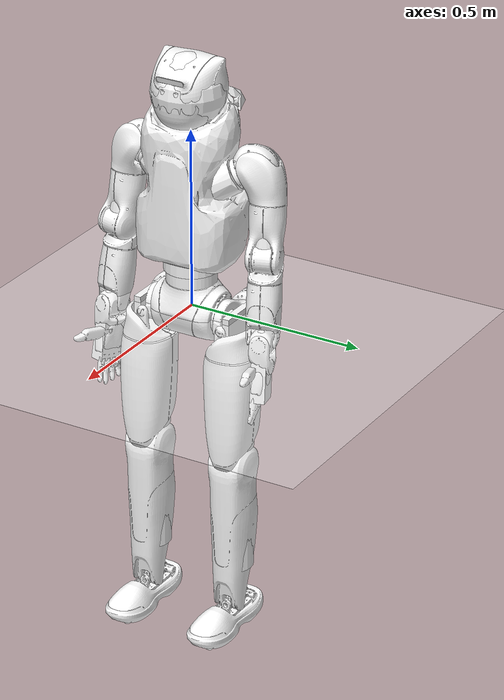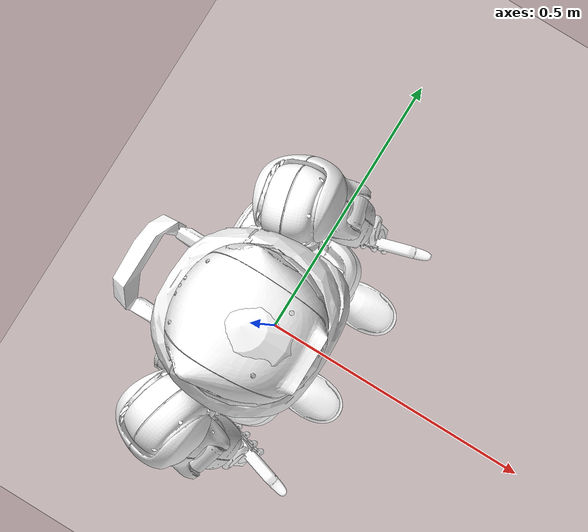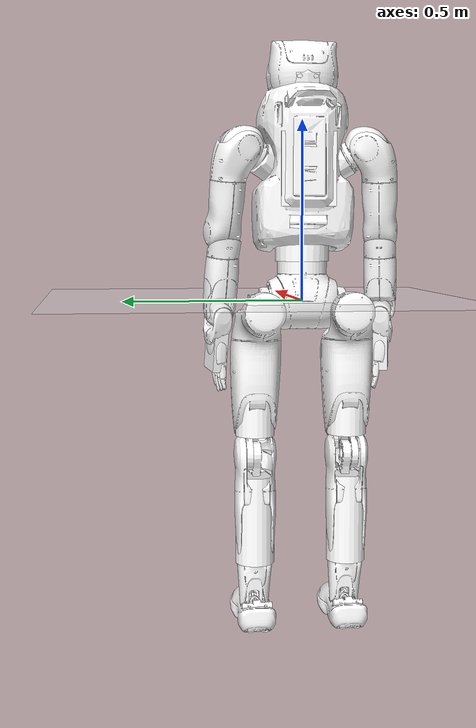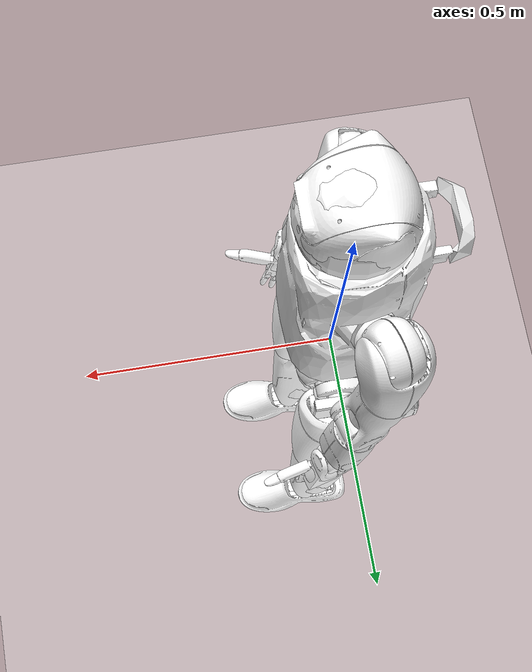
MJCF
<mujoco model="gr3v2_1_1_dummy_hand">
  <compiler angle="radian" meshdir="../meshes/"/>

  <asset>
    <texture type="skybox" builtin="gradient" rgb1="1 1 1" rgb2="1 1 1" width="800" height="800"/>
    <texture type="2d" name="groundplane" builtin="checker" mark="edge" rgb1="1 1 1" rgb2="1 1 1" markrgb="0 0 0"
      width="300" height="300"/>
    <material name="groundplane" texture="groundplane" texuniform="true" texrepeat="5 5" reflectance="0"/>
    <mesh name="base_link" file="../meshes/gr3v2_1_1/base_link.STL"/>
    <mesh name="waist_yaw_link" file="../meshes/gr3v2_1_1/waist_yaw_link.STL"/>
    <mesh name="waist_roll_link" file="../meshes/gr3v2_1_1/waist_roll_link.STL"/>
    <mesh name="waist_pitch_link" file="../meshes/gr3v2_1_1/waist_pitch_link.STL"/>
    <mesh name="torso_link" file="../meshes/gr3v2_1_1/torso_link.STL"/>
    <mesh name="head_yaw_link" file="../meshes/gr3v2_1_1/head_yaw_link.STL"/>
    <mesh name="head_pitch_link" file="../meshes/gr3v2_1_1/head_pitch_link.STL"/>
    <mesh name="camera_link" file="../meshes/gr3v2_1_1/camera_link.STL"/>
    <mesh name="right_upper_arm_pitch_link" file="../meshes/gr3v2_1_1/right_upper_arm_pitch_link.STL"/>
    <mesh name="right_upper_arm_roll_link" file="../meshes/gr3v2_1_1/right_upper_arm_roll_link.STL"/>
    <mesh name="right_upper_arm_yaw_link" file="../meshes/gr3v2_1_1/right_upper_arm_yaw_link.STL"/>
    <mesh name="right_lower_arm_pitch_link" file="../meshes/gr3v2_1_1/right_lower_arm_pitch_link.STL"/>
    <mesh name="right_hand_yaw_link" file="../meshes/gr3v2_1_1/right_hand_yaw_link.STL"/>
    <mesh name="right_hand_pitch_link" file="../meshes/gr3v2_1_1/right_hand_pitch_link.STL"/>
    <mesh name="right_hand_roll_link" file="../meshes/gr3v2_1_1/right_hand_roll_link.STL"/>
    <mesh name="left_upper_arm_pitch_link" file="../meshes/gr3v2_1_1/left_upper_arm_pitch_link.STL"/>
    <mesh name="left_upper_arm_roll_link" file="../meshes/gr3v2_1_1/left_upper_arm_roll_link.STL"/>
    <mesh name="left_upper_arm_yaw_link" file="../meshes/gr3v2_1_1/left_upper_arm_yaw_link.STL"/>
    <mesh name="left_lower_arm_pitch_link" file="../meshes/gr3v2_1_1/left_lower_arm_pitch_link.STL"/>
    <mesh name="left_hand_yaw_link" file="../meshes/gr3v2_1_1/left_hand_yaw_link.STL"/>
    <mesh name="left_hand_pitch_link" file="../meshes/gr3v2_1_1/left_hand_pitch_link.STL"/>
    <mesh name="left_hand_roll_link" file="../meshes/gr3v2_1_1/left_hand_roll_link.STL"/>
    <mesh name="right_thigh_pitch_link" file="../meshes/gr3v2_1_1/right_thigh_pitch_link.STL"/>
    <mesh name="right_thigh_roll_link" file="../meshes/gr3v2_1_1/right_thigh_roll_link.STL"/>
    <mesh name="right_thigh_yaw_link" file="../meshes/gr3v2_1_1/right_thigh_yaw_link.STL"/>
    <mesh name="right_shank_pitch_link" file="../meshes/gr3v2_1_1/right_shank_pitch_link.STL"/>
    <mesh name="right_foot_pitch_link" file="../meshes/gr3v2_1_1/right_foot_pitch_link.STL"/>
    <mesh name="right_foot_roll_link" file="../meshes/gr3v2_1_1/right_foot_roll_link.STL"/>
    <mesh name="left_thigh_pitch_link" file="../meshes/gr3v2_1_1/left_thigh_pitch_link.STL"/>
    <mesh name="left_thigh_roll_link" file="../meshes/gr3v2_1_1/left_thigh_roll_link.STL"/>
    <mesh name="left_thigh_yaw_link" file="../meshes/gr3v2_1_1/left_thigh_yaw_link.STL"/>
    <mesh name="left_shank_pitch_link" file="../meshes/gr3v2_1_1/left_shank_pitch_link.STL"/>
    <mesh name="left_foot_pitch_link" file="../meshes/gr3v2_1_1/left_foot_pitch_link.STL"/>
    <mesh name="left_foot_roll_link" file="../meshes/gr3v2_1_1/left_foot_roll_link.STL"/>
    <mesh name="imu_link" file="../meshes/gr3v2_1_1/imu_link.STL"/>
    <mesh name="dummy_left_hand" file="../meshes/dummy_hand/dummy_left_hand.STL"/>
    <mesh name="dummy_right_hand" file="../meshes/dummy_hand/dummy_right_hand.STL"/>
  </asset>

  <worldbody>
    <geom name="floor" size="0 0 0.01" type="plane" material="groundplane" contype="1" conaffinity="0" priority="1"
      friction="0.6" condim="3"/>
    <light diffuse=".5 .5 .5" pos="-3 -3 5" dir="3 3 -5" castshadow="true"/>

    <body name="base_link">
      <freejoint name="floating_base"/>
      <inertial pos="0.00126521 -3.743e-05 0.0242001" quat="0.999977 0.00153918 0.0017748 -0.00642298" mass="6.19012" diaginertia="0.0346232 0.030124 0.0222189"/>
      <geom type="mesh" contype="0" conaffinity="0" group="1" density="0" rgba="1 1 1 1" mesh="base_link"/>
      <geom size="0.065 0.075" quat="0.707388 0.706825 0 0" type="cylinder" rgba="1 1 1 1"/>
      <body name="waist_yaw_link" pos="0 0 0.13633">
        <inertial pos="0.0170279 6.721e-05 0.0176361" quat="0.279749 0.280151 -0.650066 0.648591" mass="1.76486" diaginertia="0.00794851 0.00658474 0.00392985"/>
        <joint name="waist_yaw_joint" pos="0 0 0" axis="0 0 1" range="-2.618 2.618" actuatorfrcrange="-140.4 140.4" damping="0.01" frictionloss="0.01"/>
        <geom type="mesh" contype="0" conaffinity="0" group="1" density="0" rgba="1 1 1 1" mesh="waist_yaw_link"/>
        <geom size="0.075 0.05" pos="0 0 0.025" type="cylinder" rgba="1 1 1 1"/>
        <body name="waist_roll_link" pos="0 0 0.0561">
          <inertial pos="-0.00194402 0 4.95e-05" quat="0 0.707071 0 0.707142" mass="0.204867" diaginertia="0.00011612 0.00011436 1.641e-05"/>
          <joint name="waist_roll_joint" pos="0 0 0" axis="1 0 0" range="-0.17453 0.17453" actuatorfrcrange="-108.6 108.6" damping="0.01" frictionloss="0.01"/>
          <geom type="mesh" contype="0" conaffinity="0" group="1" density="0" rgba="1 1 1 1" mesh="waist_roll_link"/>
          <body name="waist_pitch_link">
            <inertial pos="-0.0036965 -0.00014711 0.00611145" quat="0.63557 0.635438 -0.310127 0.309984" mass="2.88081" diaginertia="0.0198743 0.0194171 0.00325257"/>
            <joint name="waist_pitch_joint" pos="0 0 0" axis="0 1 0" range="-0.20944 0.5236" actuatorfrcrange="-108.6 108.6" damping="0.01" frictionloss="0.01"/>
            <geom type="mesh" contype="0" conaffinity="0" group="1" density="0" rgba="1 1 1 1" mesh="waist_pitch_link"/>
            <body name="torso_link" pos="0 0 0.19798">
              <inertial pos="-0.021961 -6.36e-05 -0.0090606" quat="0.997877 0.000217797 -0.065013 0.00376477" mass="13.694" diaginertia="0.189139 0.18007 0.102501"/>
              <geom type="mesh" contype="0" conaffinity="0" group="1" density="0" rgba="1 1 1 1" mesh="torso_link"/>
              <geom size="0.1 0.075 0.1" pos="-0.01 0 -0.03" type="box" rgba="1 1 1 1"/>
              <body name="head_yaw_link" pos="0.0077592 0 0.18812">
                <inertial pos="0.0012671 0.011829 0.012608" quat="0.982775 -0.183171 0.0245308 -0.000145896" mass="0.20381" diaginertia="0.000207464 0.000179401 6.48847e-05"/>
                <joint name="head_yaw_joint" pos="0 0 0" axis="0 0 1" range="-1.3963 1.3963" actuatorfrcrange="-17.4 17.4" damping="0.01" frictionloss="0.01"/>
                <geom type="mesh" contype="0" conaffinity="0" group="1" density="0" rgba="1 1 1 1" mesh="head_yaw_link"/>
                <body name="head_pitch_link" pos="0.0028545 0 0.037315">
                  <inertial pos="-0.0022067 0.0014158 0.022733" quat="0.0215591 0.862146 0.068711 0.501515" mass="1.2045" diaginertia="0.00444425 0.00425519 0.00376096"/>
                  <joint name="head_pitch_joint" pos="0 0 0" axis="0 1 0" range="-0.5236 0.1483" actuatorfrcrange="-17.4 17.4" damping="0.01" frictionloss="0.01"/>
                  <geom type="mesh" contype="0" conaffinity="0" group="1" density="0" rgba="1 1 1 1" mesh="head_pitch_link"/>
                  <geom size="0.1" rgba="1 1 1 1"/>
                  <body name="camera_link" pos="0.090296 0 0.05116" quat="0.991445 0 0.130526 0">
                    <inertial pos="-0.0006 0 0" quat="0.707107 0.707107 0 0" mass="0.00156615" diaginertia="8e-07 7.7e-07 3e-08"/>
                    <geom type="mesh" contype="0" conaffinity="0" group="1" density="0" rgba="1 1 1 1" mesh="camera_link"/>
                  </body>
                </body>
              </body>
              <body name="right_upper_arm_pitch_link" pos="-0.017665 -0.11819 0" quat="0.949166 -0.270513 -0.0440157 -0.154822">
                <inertial pos="-0.00109222 -0.0432651 7.305e-05" quat="0.704395 0.709768 -0.00735292 -0.00206275" mass="1.40211" diaginertia="0.00334354 0.00311659 0.00138294"/>
                <joint name="right_shoulder_pitch_joint" pos="0 0 0" axis="0 1 0" range="-2.9671 2.9671" actuatorfrcrange="-74.4 74.4" damping="0.01" frictionloss="0.01"/>
                <geom type="mesh" contype="0" conaffinity="0" group="1" density="0" rgba="1 1 1 1" mesh="right_upper_arm_pitch_link"/>
                <body name="right_upper_arm_roll_link" pos="0 -0.0695 0">
                  <inertial pos="-0.00922224 0.00507521 -0.0440117" quat="0.752628 0.0261981 -0.136747 0.643557" mass="1.14984" diaginertia="0.00420933 0.00393561 0.00160701"/>
                  <joint name="right_shoulder_roll_joint" pos="0 0 0" axis="1 0 0" range="-1.9199 0.2618" actuatorfrcrange="-74.4 74.4" damping="0.01" frictionloss="0.01"/>
                  <geom type="mesh" contype="0" conaffinity="0" group="1" density="0" rgba="1 1 1 1" mesh="right_upper_arm_roll_link"/>
                  <geom size="0.05" rgba="1 1 1 1"/>
                  <body name="right_upper_arm_yaw_link" pos="0 0.022594 -0.10473" quat="0.965926 0.25882 0 0">
                    <inertial pos="0.00487548 -0.00323214 -0.0670377" quat="0.996054 -0.049519 -0.0672516 0.0300296" mass="1.09369" diaginertia="0.00392653 0.00383874 0.00118541"/>
                    <joint name="right_shoulder_yaw_joint" pos="0 0 0" axis="0 0 1" range="-1.8326 1.8326" actuatorfrcrange="-42.9 42.9" damping="0.01" frictionloss="0.01"/>
                    <geom type="mesh" contype="0" conaffinity="0" group="1" density="0" rgba="1 1 1 1" mesh="right_upper_arm_yaw_link"/>
                    <geom size="0.04 0.07" pos="0 0 -0.05" type="cylinder" rgba="1 1 1 1"/>
                    <body name="right_lower_arm_pitch_link" pos="0.01643 0 -0.1385">
                      <inertial pos="-0.00706017 -0.00106132 -0.0204218" quat="0.714323 0.103642 0.0895951 0.686276" mass="0.872267" diaginertia="0.00144229 0.00143121 0.000638631"/>
                      <joint name="right_elbow_pitch_joint" pos="0 0 0" axis="0 1 0" range="-2.2689 0.087266" actuatorfrcrange="-42.9 42.9" damping="0.01" frictionloss="0.01"/>
                      <geom type="mesh" contype="0" conaffinity="0" group="1" density="0" rgba="1 1 1 1" mesh="right_lower_arm_pitch_link"/>
                      <body name="right_hand_yaw_link" pos="-0.01643 0 -0.05">
                        <inertial pos="-0.00029804 0.00296836 -0.0687052" quat="0.999091 0.0316346 0.00342153 0.0283811" mass="1.21478" diaginertia="0.00310813 0.00298521 0.00102916"/>
                        <joint name="right_wrist_yaw_joint" pos="0 0 0" axis="0 0 1" range="-1.8326 1.8326" actuatorfrcrange="-42.9 42.9" damping="0.01" frictionloss="0.01"/>
                        <geom type="mesh" contype="0" conaffinity="0" group="1" density="0" rgba="1 1 1 1" mesh="right_hand_yaw_link"/>
                        <geom size="0.04 0.06" pos="0 0 -0.07" type="cylinder" rgba="1 1 1 1"/>
                        <body name="right_hand_pitch_link" pos="0 0 -0.18">
                          <inertial pos="0.00394048 -2.63e-06 7.196e-05" quat="0.662664 0.254309 0.240951 0.661926" mass="0.577357" diaginertia="0.00034722 0.000320637 0.000319943"/>
                          <joint name="right_wrist_pitch_joint" pos="0 0 0" axis="0 1 0" range="-0.87266 1.309" actuatorfrcrange="-17.4 17.4" damping="0.01" frictionloss="0.01"/>
                          <geom type="mesh" contype="0" conaffinity="0" group="1" density="0" rgba="1 1 1 1" mesh="right_hand_pitch_link"/>
                          <body name="right_hand_roll_link" pos="0 -0.00049967 0">
                            <inertial pos="0.00765557 -0.00226771 -0.0212963" quat="0.686764 0.200553 0.334854 0.613193" mass="0.21214" diaginertia="0.000288704 0.000216308 0.000163308"/>
                            <joint name="right_wrist_roll_joint" pos="0 0 0" axis="1 0 0" range="-1.2217 1.0472" actuatorfrcrange="-17.4 17.4" damping="0.01" frictionloss="0.01"/>
                            <geom type="mesh" contype="0" conaffinity="0" group="1" density="0" rgba="1 1 1 1" mesh="right_hand_roll_link"/>
                            <body name="right_end_effector_link" pos="0 0 -0.049">
                              <body name="dummy_right_hand_link">
                                <inertial pos="0.01432 0.006317 -0.0565" quat="0.588738 0.298953 0.293382 0.691334" mass="0.4686" diaginertia="0.00137085 0.000966096 0.000498157"/>
                                <geom type="mesh" contype="0" conaffinity="0" group="1" density="0" rgba="1 1 1 1" mesh="dummy_right_hand"/>
                                <geom size="0.035 0.02 0.055" pos="0 0 -0.055" type="box" rgba="1 1 1 1"/>
                              </body>
                            </body>
                          </body>
                        </body>
                      </body>
                    </body>
                  </body>
                </body>
              </body>
              <body name="left_upper_arm_pitch_link" pos="-0.017665 0.11818 0" quat="0.949166 0.270513 -0.0440157 0.154822">
                <inertial pos="-0.00109222 0.0432651 7.305e-05" quat="0.709768 0.704395 0.00206275 0.00735292" mass="1.40211" diaginertia="0.00334354 0.00311659 0.00138294"/>
                <joint name="left_shoulder_pitch_joint" pos="0 0 0" axis="0 1 0" range="-2.9671 2.9671" actuatorfrcrange="-74.4 74.4" damping="0.01" frictionloss="0.01"/>
                <geom type="mesh" contype="0" conaffinity="0" group="1" density="0" rgba="1 1 1 1" mesh="left_upper_arm_pitch_link"/>
                <body name="left_upper_arm_roll_link" pos="0 0.0695 0">
                  <inertial pos="-0.00922224 -0.00507521 -0.0440117" quat="0.643557 -0.136747 0.0261981 0.752628" mass="1.14984" diaginertia="0.00420933 0.00393561 0.00160701"/>
                  <joint name="left_shoulder_roll_joint" pos="0 0 0" axis="1 0 0" range="-0.2618 1.9199" actuatorfrcrange="-74.4 74.4" damping="0.01" frictionloss="0.01"/>
                  <geom type="mesh" contype="0" conaffinity="0" group="1" density="0" rgba="1 1 1 1" mesh="left_upper_arm_roll_link"/>
                  <geom size="0.05" rgba="1 1 1 1"/>
                  <body name="left_upper_arm_yaw_link" pos="0 -0.022594 -0.10473" quat="0.965926 -0.25882 0 0">
                    <inertial pos="0.00487548 0.00323214 -0.0670377" quat="0.996054 0.049519 -0.0672516 -0.0300296" mass="1.09369" diaginertia="0.00392653 0.00383874 0.00118541"/>
                    <joint name="left_shoulder_yaw_joint" pos="0 0 0" axis="0 0 1" range="-1.8326 1.8326" actuatorfrcrange="-42.9 42.9" damping="0.01" frictionloss="0.01"/>
                    <geom type="mesh" contype="0" conaffinity="0" group="1" density="0" rgba="1 1 1 1" mesh="left_upper_arm_yaw_link"/>
                    <geom size="0.04 0.07" pos="0 0 -0.05" type="cylinder" rgba="1 1 1 1"/>
                    <body name="left_lower_arm_pitch_link" pos="0.01643 0 -0.1385">
                      <inertial pos="-0.00706017 0.00106132 -0.0204218" quat="0.686276 0.0895951 0.103642 0.714323" mass="0.872267" diaginertia="0.00144229 0.00143121 0.000638631"/>
                      <joint name="left_elbow_pitch_joint" pos="0 0 0" axis="0 1 0" range="-2.2689 0.087266" actuatorfrcrange="-42.9 42.9" damping="0.01" frictionloss="0.01"/>
                      <geom type="mesh" contype="0" conaffinity="0" group="1" density="0" rgba="1 1 1 1" mesh="left_lower_arm_pitch_link"/>
                      <body name="left_hand_yaw_link" pos="-0.01643 0 -0.05">
                        <inertial pos="-0.00029804 -0.00296836 -0.0687052" quat="0.999091 -0.0316346 0.00342153 -0.0283811" mass="1.21478" diaginertia="0.00310813 0.00298521 0.00102916"/>
                        <joint name="left_wrist_yaw_joint" pos="0 0 0" axis="0 0 1" range="-1.8326 1.8326" actuatorfrcrange="-42.9 42.9" damping="0.01" frictionloss="0.01"/>
                        <geom type="mesh" contype="0" conaffinity="0" group="1" density="0" rgba="1 1 1 1" mesh="left_hand_yaw_link"/>
                        <geom size="0.04 0.06" pos="0 0 -0.07" type="cylinder" rgba="1 1 1 1"/>
                        <body name="left_hand_pitch_link" pos="0 0 -0.18">
                          <inertial pos="0.00394048 2.63e-06 7.196e-05" quat="0.661926 0.240951 0.254309 0.662664" mass="0.577357" diaginertia="0.00034722 0.000320637 0.000319943"/>
                          <joint name="left_wrist_pitch_joint" pos="0 0 0" axis="0 1 0" range="-0.87266 1.309" actuatorfrcrange="-17.4 17.4" damping="0.01" frictionloss="0.01"/>
                          <geom type="mesh" contype="0" conaffinity="0" group="1" density="0" rgba="1 1 1 1" mesh="left_hand_pitch_link"/>
                          <body name="left_hand_roll_link">
                            <inertial pos="0.00765557 0.00226771 -0.0212963" quat="0.613193 0.334854 0.200553 0.686764" mass="0.21214" diaginertia="0.000288704 0.000216308 0.000163308"/>
                            <joint name="left_wrist_roll_joint" pos="0 0 0" axis="1 0 0" range="-1.0472 1.2217" actuatorfrcrange="-17.4 17.4" damping="0.01" frictionloss="0.01"/>
                            <geom type="mesh" contype="0" conaffinity="0" group="1" density="0" rgba="1 1 1 1" mesh="left_hand_roll_link"/>
                            <body name="left_end_effector_link" pos="0 0 -0.049">
                              <body name="left_dummy_hand_link">
                                <inertial pos="0.01485 -0.006224 -0.05627" quat="0.689969 0.296804 0.300268 0.587953" mass="0.4686" diaginertia="0.00135175 0.000952312 0.000492942"/>
                                <geom type="mesh" contype="0" conaffinity="0" group="1" density="0" rgba="1 1 1 1" mesh="dummy_left_hand"/>
                                <geom size="0.035 0.02 0.055" pos="0 0 -0.055" type="box" rgba="1 1 1 1"/>
                              </body>
                            </body>
                          </body>
                        </body>
                      </body>
                    </body>
                  </body>
                </body>
              </body>
            </body>
          </body>
        </body>
      </body>
      <body name="right_thigh_pitch_link" pos="0 -0.074191 -0.0064909" quat="0.999048 0.0436192 0 0">
        <inertial pos="-0.0337126 -0.014783 -0.00641529" quat="-0.34726 0.658374 0.0356036 0.666848" mass="2.11064" diaginertia="0.00786921 0.00769486 0.00227558"/>
        <joint name="right_hip_pitch_joint" pos="0 0 0" axis="0 1 0" range="-2.618 2.618" actuatorfrcrange="-366 366" damping="0.01" frictionloss="0.01"/>
        <geom type="mesh" contype="0" conaffinity="0" group="1" density="0" rgba="1 1 1 1" mesh="right_thigh_pitch_link"/>
        <body name="right_thigh_roll_link" pos="0 -0.0479 -0.015" quat="0.999048 -0.0436192 0 0">
          <inertial pos="-0.0431189 -0.00872071 -0.0463606" quat="0.100989 0.875233 0.127511 0.455532" mass="3.23889" diaginertia="0.0197499 0.0195021 0.00550293"/>
          <joint name="right_hip_roll_joint" pos="0 0 0" axis="1 0 0" range="-1.5708 0.17453" actuatorfrcrange="-140.4 140.4" damping="0.01" frictionloss="0.01"/>
          <geom type="mesh" contype="0" conaffinity="0" group="1" density="0" rgba="1 1 1 1" mesh="right_thigh_roll_link"/>
          <geom size="0.1 0.01 0.04" pos="-0.045 -0.015 0" type="box" rgba="1 1 1 1"/>
          <body name="right_thigh_yaw_link" pos="0.0052421 -0.010464 -0.093339">
            <inertial pos="0.00334277 -0.00252174 -0.122161" quat="0.701619 -0.0174062 -0.00729222 0.712302" mass="5.41819" diaginertia="0.0423759 0.0407304 0.0101659"/>
            <joint name="right_hip_yaw_joint" pos="0 0 0" axis="0 0 1" range="-1.5708 0.69813" actuatorfrcrange="-140.4 140.4" damping="0.01" frictionloss="0.01"/>
            <geom type="mesh" contype="0" conaffinity="0" group="1" density="0" rgba="1 1 1 1" mesh="right_thigh_yaw_link"/>
            <geom size="0.055 0.11" pos="0 0 -0.15" type="cylinder" rgba="1 1 1 1"/>
            <body name="right_shank_pitch_link" pos="0 0 -0.31499">
              <inertial pos="0.0120631 4.306e-05 -0.198182" quat="0.685409 -0.00285727 -0.00262779 0.728148" mass="3.19509" diaginertia="0.0416832 0.0410001 0.00410113"/>
              <joint name="right_knee_pitch_joint" pos="0 0 0" axis="0 1 0" range="0 2.3562" actuatorfrcrange="-366 366" damping="0.01" frictionloss="0.01"/>
              <geom type="mesh" contype="0" conaffinity="0" group="1" density="0" rgba="1 1 1 1" mesh="right_shank_pitch_link"/>
              <geom size="0.055 0.125" pos="0 0 -0.185" type="cylinder" rgba="1 1 1 1"/>
              <body name="right_foot_pitch_link" pos="0.019967 0 -0.425">
                <inertial pos="0 0 -1.223e-05" mass="0.0594926" diaginertia="6.77e-06 6.15e-06 3.74e-06"/>
                <joint name="right_ankle_pitch_joint" pos="0 0 0" axis="0 1 0" range="-0.7854 0.7854" actuatorfrcrange="-59.4 59.4" damping="0.01" frictionloss="0.01"/>
                <geom type="mesh" contype="0" conaffinity="0" group="1" density="0" rgba="1 1 1 1" mesh="right_foot_pitch_link"/>
                <geom name="cylinder_foot_1" size="0.02 0.12" pos="0.028 -0.02 -0.048" quat="0.707388 0 0.706825 0" type="cylinder" rgba="1 1 1 1"/>
                <geom name="cylinder_foot_2" size="0.02 0.12" pos="0.028 0.02 -0.048" quat="0.707388 0 0.706825 0" type="cylinder" rgba="1 1 1 1"/>
                <body name="right_foot_roll_link">
                  <inertial pos="0.00555284 0.00021651 -0.0367927" quat="-0.00792855 0.739507 -0.0111241 0.67301" mass="1.21412" diaginertia="0.00831305 0.00796985 0.00133308"/>
                  <joint name="right_ankle_roll_joint" pos="0 0 0" axis="1 0 0" range="-0.43633 0.43633" actuatorfrcrange="-59.4 59.4" damping="0.01" frictionloss="0.01"/>
                  <geom type="mesh" contype="0" conaffinity="0" group="1" density="0" rgba="1 1 1 1" mesh="right_foot_roll_link"/>
                </body>
              </body>
            </body>
          </body>
        </body>
      </body>
      <body name="left_thigh_pitch_link" pos="0 0.074191 -0.0064909" quat="0.999048 -0.0436192 0 0">
        <inertial pos="-0.0337126 0.014783 -0.00641529" quat="0.34726 0.658374 -0.0356036 0.666848" mass="2.11064" diaginertia="0.00786921 0.00769486 0.00227558"/>
        <joint name="left_hip_pitch_joint" pos="0 0 0" axis="0 1 0" range="-2.618 2.618" actuatorfrcrange="-366 366" damping="0.01" frictionloss="0.01"/>
        <geom type="mesh" contype="0" conaffinity="0" group="1" density="0" rgba="1 1 1 1" mesh="left_thigh_pitch_link"/>
        <body name="left_thigh_roll_link" pos="0 0.0479 -0.015" quat="0.999048 0.0436192 0 0">
          <inertial pos="-0.0431189 0.00872071 -0.0463606" quat="-0.100989 0.875233 -0.127511 0.455532" mass="3.23889" diaginertia="0.0197499 0.0195021 0.00550293"/>
          <joint name="left_hip_roll_joint" pos="0 0 0" axis="1 0 0" range="-0.17453 1.5708" actuatorfrcrange="-140.4 140.4" damping="0.01" frictionloss="0.01"/>
          <geom type="mesh" contype="0" conaffinity="0" group="1" density="0" rgba="1 1 1 1" mesh="left_thigh_roll_link"/>
          <geom size="0.1 0.01 0.04" pos="-0.045 0.015 0" type="box" rgba="1 1 1 1"/>
          <body name="left_thigh_yaw_link" pos="0.0052421 0.010464 -0.093339">
            <inertial pos="0.00334277 0.00252174 -0.122161" quat="0.712302 -0.00729222 -0.0174062 0.701619" mass="5.41819" diaginertia="0.0423759 0.0407304 0.0101659"/>
            <joint name="left_hip_yaw_joint" pos="0 0 0" axis="0 0 1" range="-0.69813 1.5708" actuatorfrcrange="-140.4 140.4" damping="0.01" frictionloss="0.01"/>
            <geom type="mesh" contype="0" conaffinity="0" group="1" density="0" rgba="1 1 1 1" mesh="left_thigh_yaw_link"/>
            <geom size="0.055 0.11" pos="0 0 -0.15" type="cylinder" rgba="1 1 1 1"/>
            <body name="left_shank_pitch_link" pos="0 0 -0.31499">
              <inertial pos="0.0120631 -4.306e-05 -0.198182" quat="0.728148 -0.00262779 -0.00285727 0.685409" mass="3.19509" diaginertia="0.0416832 0.0410001 0.00410113"/>
              <joint name="left_knee_pitch_joint" pos="0 0 0" axis="0 1 0" range="0 2.3562" actuatorfrcrange="-366 366" damping="0.01" frictionloss="0.01"/>
              <geom type="mesh" contype="0" conaffinity="0" group="1" density="0" rgba="1 1 1 1" mesh="left_shank_pitch_link"/>
              <geom size="0.055 0.125" pos="0 0 -0.185" type="cylinder" rgba="1 1 1 1"/>
              <body name="left_foot_pitch_link" pos="0.020049 0 -0.425">
                <inertial pos="0 0 -1.223e-05" mass="0.0594926" diaginertia="6.77e-06 6.15e-06 3.74e-06"/>
                <joint name="left_ankle_pitch_joint" pos="0 0 0" axis="0 1 0" range="-0.7854 0.7854" actuatorfrcrange="-59.4 59.4" damping="0.01" frictionloss="0.01"/>
                <geom type="mesh" contype="0" conaffinity="0" group="1" density="0" rgba="1 1 1 1" mesh="left_foot_pitch_link"/>
                <body name="left_foot_roll_link">
                  <inertial pos="0.00555284 -0.00021651 -0.0367927" quat="0.00792855 0.739507 0.0111241 0.67301" mass="1.21412" diaginertia="0.00831305 0.00796985 0.00133308"/>
                  <joint name="left_ankle_roll_joint" pos="0 0 0" axis="1 0 0" range="-0.43633 0.43633" actuatorfrcrange="-59.4 59.4" damping="0.01" frictionloss="0.01"/>
                  <geom type="mesh" contype="0" conaffinity="0" group="1" density="0" rgba="1 1 1 1" mesh="left_foot_roll_link"/>
                  <geom size="0.02 0.12" pos="0.028 -0.02 -0.048" quat="0.707388 0 0.706825 0" type="cylinder" rgba="1 1 1 1"/>
                  <geom size="0.02 0.12" pos="0.028 0.02 -0.048" quat="0.707388 0 0.706825 0" type="cylinder" rgba="1 1 1 1"/>
                </body>
              </body>
            </body>
          </body>
        </body>
      </body>
      <body name="imu_link" pos="-0.005 0 -0.069675">
        <inertial pos="-0.00016403 0 -4.1e-05" quat="0 0.707107 0 0.707107" mass="0.03" diaginertia="2.61e-06 1.57e-06 1.44e-06"/>
        <geom type="mesh" contype="0" conaffinity="0" group="1" density="0" rgba="1 1 1 1" mesh="imu_link"/>
      </body>
    </body>
  </worldbody>

  <keyframe>
    <key name="stand"
      qpos="
      0 0 0.90
      1 0 0 0
      0 0 0
      0 0
      0 0 0 0 0 0 0
      0 0 0 0 0 0 0
      0 0 0 0 0 0
      0 0 0 0 0 0
      "/>
  </keyframe>
</mujoco>
